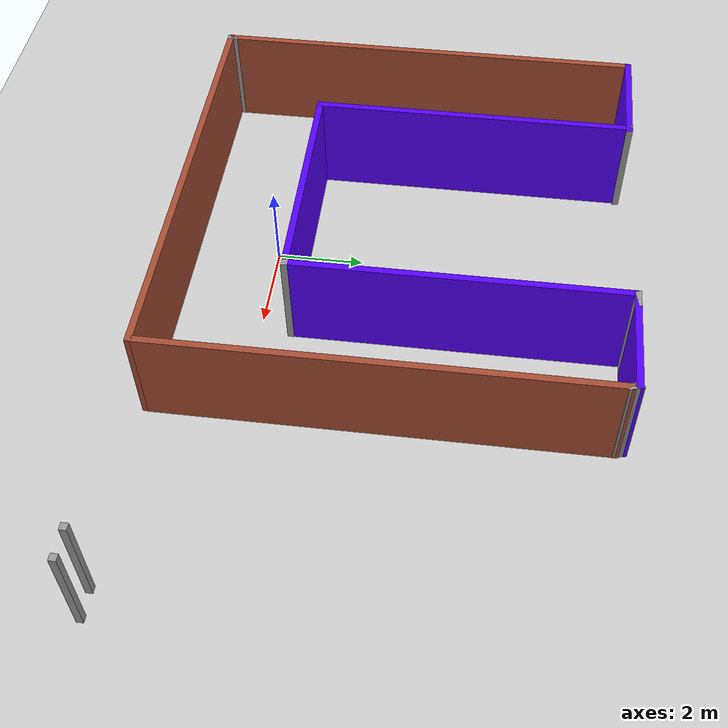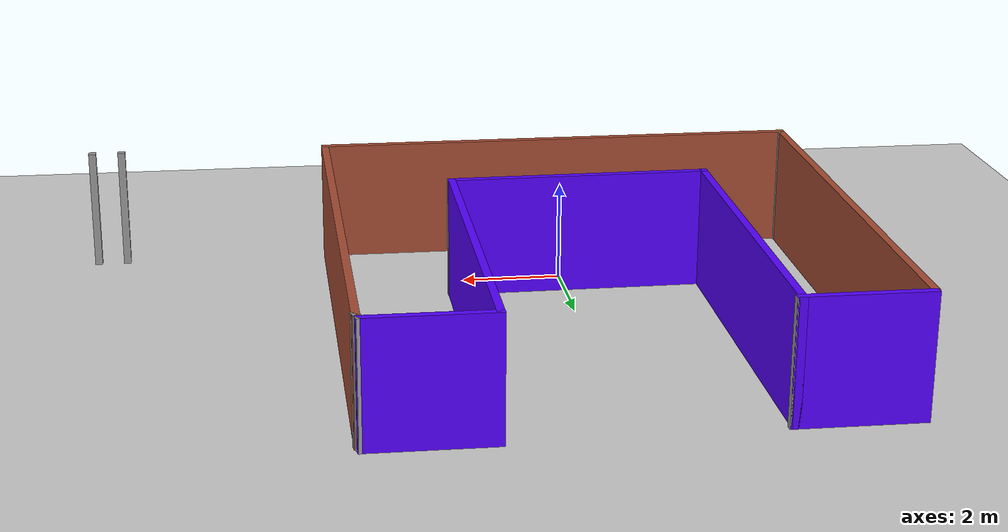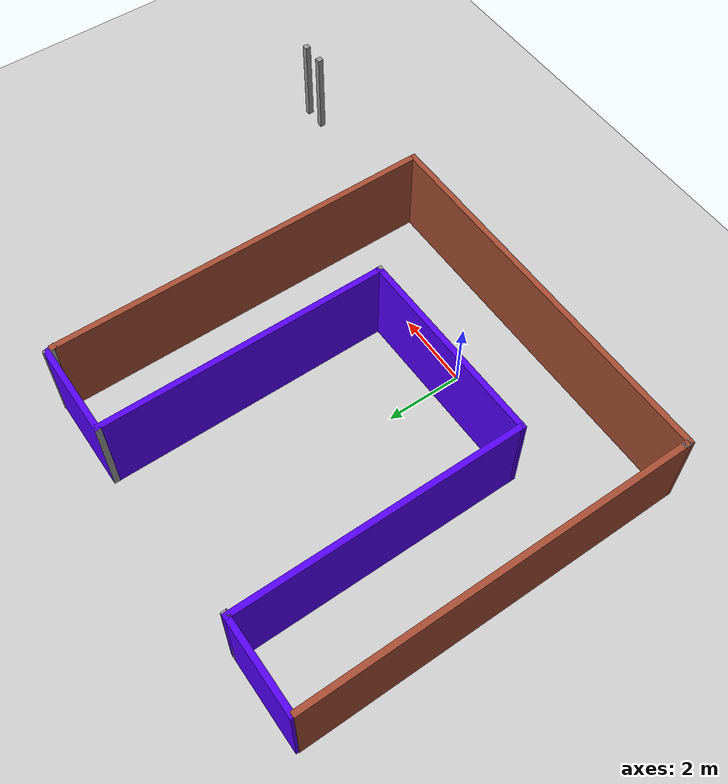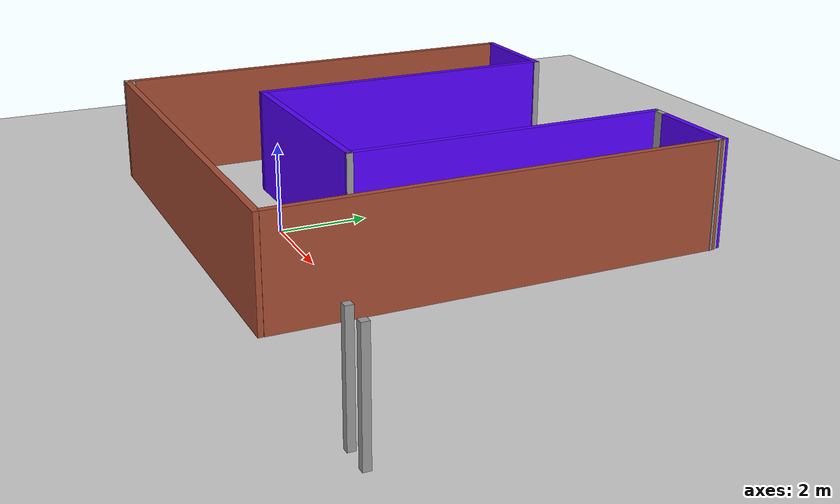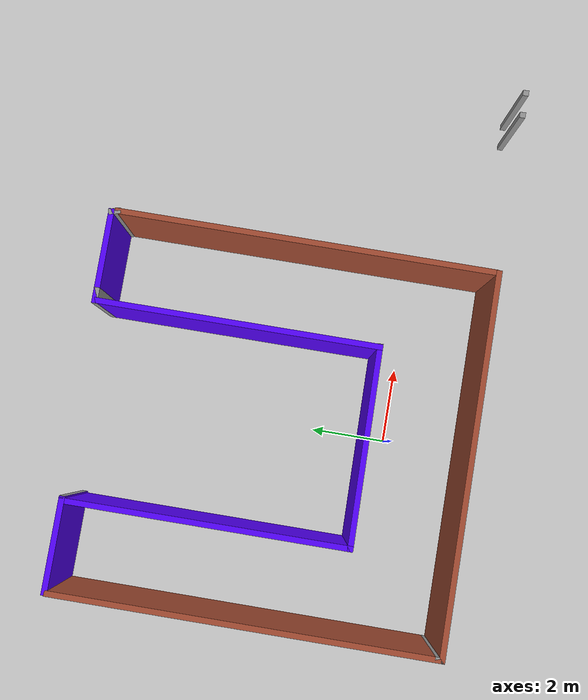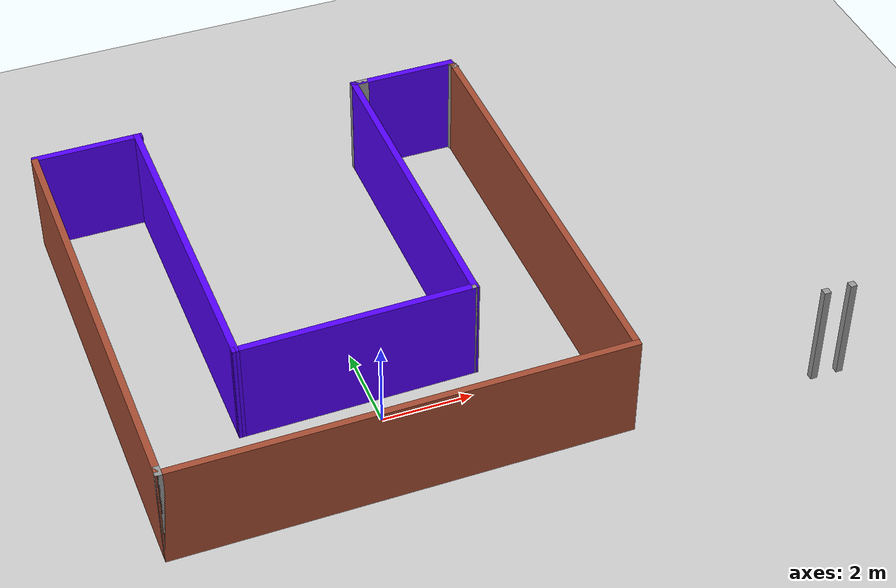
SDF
<sdf version="1.6">
 <world name="default">
  <light name="sun" type="directional">
   <pose>0 0 10 0 -0 0</pose>
   <diffuse>0.8 0.8 0.8 1</diffuse>
   <specular>0.2 0.2 0.2 1</specular>
   <attenuation>
    <range>1000</range>
    <constant>0.9</constant>
    <linear>0.01</linear>
    <quadratic>0.001</quadratic>
   </attenuation>
   <direction>-0.5 0.1 -0.9</direction>
  </light>
  <model name="ground_plane">
   <static>1</static>
   <link name="link">
    <collision name="collision">
     <geometry><plane><normal>0 0 1</normal><size>100 100</size></plane></geometry>
     <surface>
      <contact><collide_bitmask>65535</collide_bitmask></contact>
      <friction><ode><mu>100</mu><mu2>50</mu2></ode></friction>
     </surface>
    </collision>
    <visual name="visual">
     <cast_shadows>0</cast_shadows>
     <geometry><plane><normal>0 0 1</normal><size>100 100</size></plane></geometry>
     <material>
      <script><uri>file://media/materials/scripts/gazebo.material</uri><name>Gazebo/Grey</name></script>
     </material>
    </visual>
   </link>
  </model>
  <gravity>0 0 -9.8</gravity>
  <magnetic_field>6e-06 2.3e-05 -4.2e-05</magnetic_field>
  <atmosphere type="adiabatic"/>
  <physics name="default_physics" default="0" type="ode">
   <max_step_size>0.001</max_step_size>
   <real_time_factor>1</real_time_factor>
   <real_time_update_rate>1000</real_time_update_rate>
  </physics>
  <scene><ambient>0.4 0.4 0.4 1</ambient><background>0.7 0.7 0.7 1</background><shadows>1</shadows></scene>
  <spherical_coordinates>
   <surface_model>EARTH_WGS84</surface_model>
   <latitude_deg>0</latitude_deg>
   <longitude_deg>0</longitude_deg>
   <elevation>0</elevation>
   <heading_deg>0</heading_deg>
  </spherical_coordinates>
  <model name="homerobot">
   <pose>2.19205 3.04734 -0.092635 0 -0 0</pose>
   <link name="Wall_0">
    <collision name="Wall_0_Collision">
     <geometry><box><size>10 0.15 2.5</size></box></geometry>
     <pose>0 0 1.25 0 -0 0</pose>
    </collision>
    <visual name="Wall_0_Visual">
     <pose>0 0 1.25 0 -0 0</pose>
     <geometry><box><size>10 0.15 2.5</size></box></geometry>
     <material>
      <script><uri>file://media/materials/scripts/gazebo.material</uri><name>Gazebo/Bricks</name></script>
      <ambient>0.996078 0.47451 0.0196078 1</ambient>
     </material>
     <meta><layer>0</layer></meta>
    </visual>
    <pose>-7.35 -0.048736 0 0 0 -1.5708</pose>
   </link>
   <link name="Wall_10">
    <collision name="Wall_10_Collision">
     <geometry><box><size>10 0.15 2.5</size></box></geometry>
     <pose>0 0 1.25 0 -0 0</pose>
    </collision>
    <visual name="Wall_10_Visual">
     <pose>0 0 1.25 0 -0 0</pose>
     <geometry><box><size>10 0.15 2.5</size></box></geometry>
     <material>
      <script><uri>file://media/materials/scripts/gazebo.material</uri><name>Gazebo/Bricks</name></script>
      <ambient>0.996078 0.47451 0.0196078 1</ambient>
     </material>
     <meta><layer>0</layer></meta>
    </visual>
    <pose>-2.425 -5.07374 0 0 -0 0</pose>
   </link>
   <link name="Wall_12">
    <collision name="Wall_12_Collision">
     <geometry><box><size>0.15 0.15 2.5</size></box></geometry>
     <pose>0 0 1.25 0 -0 0</pose>
    </collision>
    <visual name="Wall_12_Visual">
     <pose>0 0 1.25 0 -0 0</pose>
     <geometry><box><size>0.15 0.15 2.5</size></box></geometry>
     <material>
      <script><uri>file://media/materials/scripts/gazebo.material</uri><name>Gazebo/Grey</name></script>
      <ambient>1 1 1 1</ambient>
     </material>
     <meta><layer>0</layer></meta>
    </visual>
    <pose>7.35 -5.07374 0 0 -0 0</pose>
   </link>
   <link name="Wall_14">
    <collision name="Wall_14_Collision">
     <geometry><box><size>0.15 0.15 2.5</size></box></geometry>
     <pose>0 0 1.25 0 -0 0</pose>
    </collision>
    <visual name="Wall_14_Visual">
     <pose>0 0 1.25 0 -0 0</pose>
     <geometry><box><size>0.15 0.15 2.5</size></box></geometry>
     <material>
      <script><uri>file://media/materials/scripts/gazebo.material</uri><name>Gazebo/Grey</name></script>
      <ambient>1 1 1 1</ambient>
     </material>
     <meta><layer>0</layer></meta>
    </visual>
    <pose>6.75 -5.07374 0 0 -0 0</pose>
   </link>
   <link name="Wall_16">
    <collision name="Wall_16_Collision">
     <geometry><box><size>2.5 0.15 2.5</size></box></geometry>
     <pose>0 0 1.25 0 -0 0</pose>
    </collision>
    <visual name="Wall_16_Visual">
     <pose>0 0 1.25 0 -0 0</pose>
     <geometry><box><size>2.5 0.15 2.5</size></box></geometry>
     <material>
      <script><uri>file://media/materials/scripts/gazebo.material</uri><name>Gazebo/Grey</name></script>
      <ambient>0.333333 0 1 1</ambient>
     </material>
     <meta><layer>0</layer></meta>
    </visual>
    <pose>-6.16028 4.94895 0 0 -0 3.14159</pose>
   </link>
   <link name="Wall_19">
    <collision name="Wall_19_Collision">
     <geometry><box><size>0.193503 0.15 2.5</size></box></geometry>
     <pose>0 0 1.25 0 -0 0</pose>
    </collision>
    <visual name="Wall_19_Visual">
     <pose>0 0 1.25 0 -0 0</pose>
     <geometry><box><size>0.193503 0.15 2.5</size></box></geometry>
     <material>
      <script><uri>file://media/materials/scripts/gazebo.material</uri><name>Gazebo/Grey</name></script>
      <ambient>1 1 1 1</ambient>
     </material>
     <meta><layer>0</layer></meta>
    </visual>
    <pose>-5.00703 4.94895 0 0 -0 3.14159</pose>
   </link>
   <link name="Wall_20">
    <collision name="Wall_20_Collision">
     <geometry><box><size>7.5 0.15 2.5</size></box></geometry>
     <pose>0 0 1.25 0 -0 0</pose>
    </collision>
    <visual name="Wall_20_Visual">
     <pose>0 0 1.25 0 -0 0</pose>
     <geometry><box><size>7.5 0.15 2.5</size></box></geometry>
     <material>
      <script><uri>file://media/materials/scripts/gazebo.material</uri><name>Gazebo/Grey</name></script>
      <ambient>0.333333 0 1 1</ambient>
     </material>
     <meta><layer>0</layer></meta>
    </visual>
    <pose>-5.02878 1.27395 0 0 0 -1.5708</pose>
   </link>
   <link name="Wall_22">
    <collision name="Wall_22_Collision">
     <geometry><box><size>0.317724 0.15 2.5</size></box></geometry>
     <pose>0 0 1.25 0 -0 0</pose>
    </collision>
    <visual name="Wall_22_Visual">
     <pose>0 0 1.25 0 -0 0</pose>
     <geometry><box><size>0.317724 0.15 2.5</size></box></geometry>
     <material>
      <script><uri>file://media/materials/scripts/gazebo.material</uri><name>Gazebo/Grey</name></script>
      <ambient>1 1 1 1</ambient>
     </material>
     <meta><layer>0</layer></meta>
    </visual>
    <pose>2.4847 4.97535 0 0 -0 1.85024</pose>
   </link>
   <link name="Wall_23">
    <collision name="Wall_23_Collision">
     <geometry><box><size>2.5 0.15 2.5</size></box></geometry>
     <pose>0 0 1.25 0 -0 0</pose>
    </collision>
    <visual name="Wall_23_Visual">
     <pose>0 0 1.25 0 -0 0</pose>
     <geometry><box><size>2.5 0.15 2.5</size></box></geometry>
     <material>
      <script><uri>file://media/materials/scripts/gazebo.material</uri><name>Gazebo/Grey</name></script>
      <ambient>0.333333 0 1 1</ambient>
     </material>
     <meta><layer>0</layer></meta>
    </visual>
    <pose>1.28657 5.05596 0 0 -0 3.14159</pose>
   </link>
   <link name="Wall_24">
    <collision name="Wall_24_Collision">
     <geometry><box><size>0.41 0.15 2.5</size></box></geometry>
     <pose>0 0 1.25 0 -0 0</pose>
    </collision>
    <visual name="Wall_24_Visual">
     <pose>0 0 1.25 0 -0 0</pose>
     <geometry><box><size>0.41 0.15 2.5</size></box></geometry>
     <material>
      <script><uri>file://media/materials/scripts/gazebo.material</uri><name>Gazebo/Grey</name></script>
      <ambient>1 1 1 1</ambient>
     </material>
     <meta><layer>0</layer></meta>
    </visual>
    <pose>0.241566 5.05596 0 0 -0 0</pose>
   </link>
   <link name="Wall_26">
    <collision name="Wall_26_Collision">
     <geometry><box><size>7.5 0.15 2.5</size></box></geometry>
     <pose>0 0 1.25 0 -0 0</pose>
    </collision>
    <visual name="Wall_26_Visual">
     <pose>0 0 1.25 0 -0 0</pose>
     <geometry><box><size>7.5 0.15 2.5</size></box></geometry>
     <material>
      <script><uri>file://media/materials/scripts/gazebo.material</uri><name>Gazebo/Grey</name></script>
      <ambient>0.333333 0 1 1</ambient>
     </material>
     <meta><layer>0</layer></meta>
    </visual>
    <pose>0.114053 1.32746 0 0 0 -1.5708</pose>
   </link>
   <link name="Wall_29">
    <collision name="Wall_29_Collision">
     <geometry><box><size>5.29312 0.15 2.5</size></box></geometry>
     <pose>0 0 1.25 0 -0 0</pose>
    </collision>
    <visual name="Wall_29_Visual">
     <pose>0 0 1.25 0 -0 0</pose>
     <geometry><box><size>5.29312 0.15 2.5</size></box></geometry>
     <material>
      <script><uri>file://media/materials/scripts/gazebo.material</uri><name>Gazebo/Grey</name></script>
      <ambient>0.333333 0 1 1</ambient>
     </material>
     <meta><layer>0</layer></meta>
    </visual>
    <pose>-2.45737 -2.3743 0 0 -0 0.010403</pose>
   </link>
   <link name="Wall_30">
    <collision name="Wall_30_Collision">
     <geometry><box><size>0.16 0.15 2.5</size></box></geometry>
     <pose>0 0 1.25 0 -0 0</pose>
    </collision>
    <visual name="Wall_30_Visual">
     <pose>0 0 1.25 0 -0 0</pose>
     <geometry><box><size>0.16 0.15 2.5</size></box></geometry>
     <material>
      <script><uri>file://media/materials/scripts/gazebo.material</uri><name>Gazebo/Grey</name></script>
      <ambient>1 1 1 1</ambient>
     </material>
     <meta><layer>0</layer></meta>
    </visual>
    <pose>0.119053 -2.34754 0 0 -0 0</pose>
   </link>
   <link name="Wall_4">
    <collision name="Wall_4_Collision">
     <geometry><box><size>10 0.15 2.5</size></box></geometry>
     <pose>0 0 1.25 0 -0 0</pose>
    </collision>
    <visual name="Wall_4_Visual">
     <pose>0 0 1.25 0 -0 0</pose>
     <geometry><box><size>10 0.15 2.5</size></box></geometry>
     <material>
      <script><uri>file://media/materials/scripts/gazebo.material</uri><name>Gazebo/Bricks</name></script>
      <ambient>0.996078 0.47451 0.0196078 1</ambient>
     </material>
     <meta><layer>0</layer></meta>
    </visual>
    <pose>2.50783 -0.030259 0 0 0 -1.5708</pose>
   </link>
   <link name="Wall_9">
    <collision name="Wall_9_Collision">
     <geometry><box><size>0.25 0.15 2.5</size></box></geometry>
     <pose>0 0 1.25 0 -0 0</pose>
    </collision>
    <visual name="Wall_9_Visual">
     <pose>0 0 1.25 0 -0 0</pose>
     <geometry><box><size>0.25 0.15 2.5</size></box></geometry>
     <material>
      <script><uri>file://media/materials/scripts/gazebo.material</uri><name>Gazebo/Grey</name></script>
      <ambient>1 1 1 1</ambient>
     </material>
     <meta><layer>0</layer></meta>
    </visual>
    <pose>-7.35 -5.02374 0 0 0 -1.5708</pose>
   </link>
   <static>1</static>
  </model>
 </world>
</sdf>
